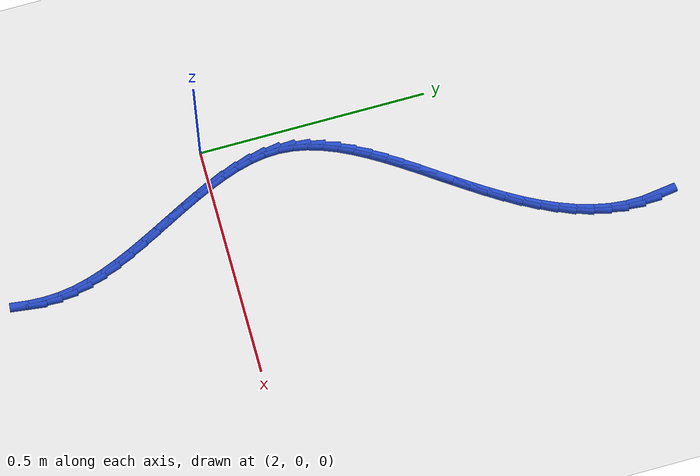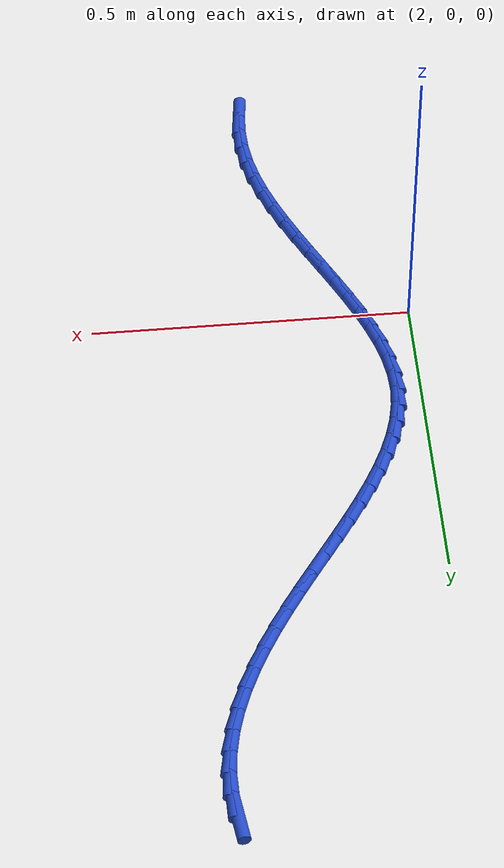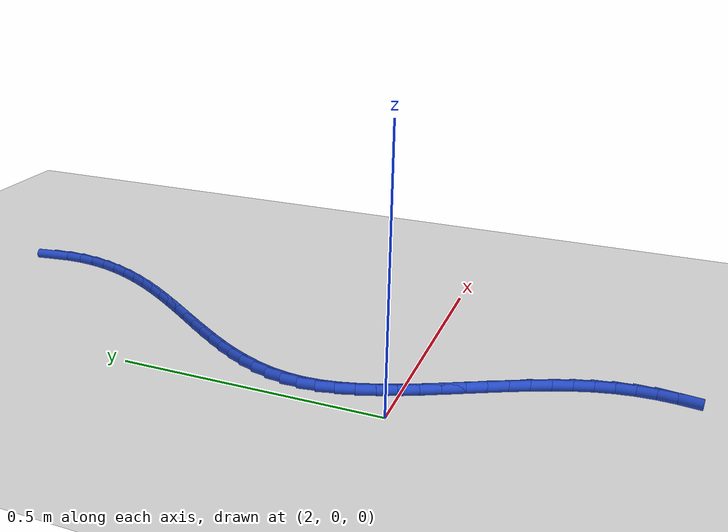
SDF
<sdf version="1.6">
 <world name="default">
  <model name="ground_plane">
   <static>1</static>
   <link name="link">
    <collision name="collision">
     <geometry><plane><normal>0 0 1</normal><size>100 100</size></plane></geometry>
     <surface><friction><ode><mu>100</mu><mu2>50</mu2></ode></friction></surface>
    </collision>
    <visual name="visual">
     <cast_shadows>0</cast_shadows>
     <geometry><plane><normal>0 0 1</normal><size>100 100</size></plane></geometry>
     <material>
      <script><uri>file://media/materials/scripts/gazebo.material</uri><name>Gazebo/WhiteGlow</name></script>
     </material>
    </visual>
   </link>
  </model>
  <model name="line">
   <link name="link_111">
    <pose>2.352010130472843 0.9241629508134968 0.01 0 1.57 -1.4389042242810406</pose>
    <collision name="collision">
     <geometry><cylinder><radius>0.01</radius><length>0.08</length></cylinder></geometry>
    </collision>
    <visual name="visual">
     <material>
      <script><name>Gazebo/Blue</name><uri>file://media/materials/scripts/gazebo.material</uri></script>
     </material>
     <geometry><cylinder><radius>0.01</radius><length>0.08</length></cylinder></geometry>
    </visual>
   </link>
   <link name="link_112">
    <pose>2.3568132731086777 0.8879571498068084 0.01 0 1.57 -1.5601403710904649</pose>
    <collision name="collision">
     <geometry><cylinder><radius>0.01</radius><length>0.08</length></cylinder></geometry>
    </collision>
    <visual name="visual">
     <material>
      <script><name>Gazebo/Blue</name><uri>file://media/materials/scripts/gazebo.material</uri></script>
     </material>
     <geometry><cylinder><radius>0.01</radius><length>0.08</length></cylinder></geometry>
    </visual>
   </link>
   <link name="link_113">
    <pose>2.3571994731211623 0.851715877274012 0.01 0 1.57 1.470739811560466</pose>
    <collision name="collision">
     <geometry><cylinder><radius>0.01</radius><length>0.08</length></cylinder></geometry>
    </collision>
    <visual name="visual">
     <material>
      <script><name>Gazebo/Blue</name><uri>file://media/materials/scripts/gazebo.material</uri></script>
     </material>
     <geometry><cylinder><radius>0.01</radius><length>0.08</length></cylinder></geometry>
    </visual>
   </link>
   <link name="link_114">
    <pose>2.3535669256293317 0.8155321544725239 0.01 0 1.57 1.372161044032186</pose>
    <collision name="collision">
     <geometry><cylinder><radius>0.01</radius><length>0.08</length></cylinder></geometry>
    </collision>
    <visual name="visual">
     <material>
      <script><name>Gazebo/Blue</name><uri>file://media/materials/scripts/gazebo.material</uri></script>
     </material>
     <geometry><cylinder><radius>0.01</radius><length>0.08</length></cylinder></geometry>
    </visual>
   </link>
   <link name="link_115">
    <pose>2.346313825752228 0.7794990026597627 0.01 0 1.57 1.2860539440457877</pose>
    <collision name="collision">
     <geometry><cylinder><radius>0.01</radius><length>0.08</length></cylinder></geometry>
    </collision>
    <visual name="visual">
     <material>
      <script><name>Gazebo/Blue</name><uri>file://media/materials/scripts/gazebo.material</uri></script>
     </material>
     <geometry><cylinder><radius>0.01</radius><length>0.08</length></cylinder></geometry>
    </visual>
   </link>
   <link name="link_116">
    <pose>2.3358383686088895 0.7437094430931458 0.01 0 1.57 1.2119078404725516</pose>
    <collision name="collision">
     <geometry><cylinder><radius>0.01</radius><length>0.08</length></cylinder></geometry>
    </collision>
    <visual name="visual">
     <material>
      <script><name>Gazebo/Blue</name><uri>file://media/materials/scripts/gazebo.material</uri></script>
     </material>
     <geometry><cylinder><radius>0.01</radius><length>0.08</length></cylinder></geometry>
    </visual>
   </link>
   <link name="link_117">
    <pose>2.3225387493183547 0.7082564970300903 0.01 0 1.57 1.148771472020918</pose>
    <collision name="collision">
     <geometry><cylinder><radius>0.01</radius><length>0.08</length></cylinder></geometry>
    </collision>
    <visual name="visual">
     <material>
      <script><name>Gazebo/Blue</name><uri>file://media/materials/scripts/gazebo.material</uri></script>
     </material>
     <geometry><cylinder><radius>0.01</radius><length>0.08</length></cylinder></geometry>
    </visual>
   </link>
   <link name="link_118">
    <pose>2.306813162999663 0.6732331857280144 0.01 0 1.57 1.0955526147759664</pose>
    <collision name="collision">
     <geometry><cylinder><radius>0.01</radius><length>0.08</length></cylinder></geometry>
    </collision>
    <visual name="visual">
     <material>
      <script><name>Gazebo/Blue</name><uri>file://media/materials/scripts/gazebo.material</uri></script>
     </material>
     <geometry><cylinder><radius>0.01</radius><length>0.08</length></cylinder></geometry>
    </visual>
   </link>
   <link name="link_119">
    <pose>2.289059804771854 0.6387325304443353 0.01 0 1.57 1.0512845150465302</pose>
    <collision name="collision">
     <geometry><cylinder><radius>0.01</radius><length>0.08</length></cylinder></geometry>
    </collision>
    <visual name="visual">
     <material>
      <script><name>Gazebo/Blue</name><uri>file://media/materials/scripts/gazebo.material</uri></script>
     </material>
     <geometry><cylinder><radius>0.01</radius><length>0.08</length></cylinder></geometry>
    </visual>
   </link>
   <link name="link_120">
    <pose>2.2696757318100294 0.6048391822168406 0.01 0 1.57 1.0160594451834826</pose>
    <collision name="collision">
     <geometry><cylinder><radius>0.01</radius><length>0.08</length></cylinder></geometry>
    </collision>
    <visual name="visual">
     <material>
      <script><name>Gazebo/Blue</name><uri>file://media/materials/scripts/gazebo.material</uri></script>
     </material>
     <geometry><cylinder><radius>0.01</radius><length>0.08</length></cylinder></geometry>
    </visual>
   </link>
   <link name="link_121">
    <pose>2.2490454193187794 0.5715452445921323 0.01 0 1.57 0.9900147650593917</pose>
    <collision name="collision">
     <geometry><cylinder><radius>0.01</radius><length>0.08</length></cylinder></geometry>
    </collision>
    <visual name="visual">
     <material>
      <script><name>Gazebo/Blue</name><uri>file://media/materials/scripts/gazebo.material</uri></script>
     </material>
     <geometry><cylinder><radius>0.01</radius><length>0.08</length></cylinder></geometry>
    </visual>
   </link>
   <link name="link_122">
    <pose>2.2275455219574845 0.538785296594826 0.01 0 1.57 0.9728954205943204</pose>
    <collision name="collision">
     <geometry><cylinder><radius>0.01</radius><length>0.08</length></cylinder></geometry>
    </collision>
    <visual name="visual">
     <material>
      <script><name>Gazebo/Blue</name><uri>file://media/materials/scripts/gazebo.material</uri></script>
     </material>
     <geometry><cylinder><radius>0.01</radius><length>0.08</length></cylinder></geometry>
    </visual>
   </link>
   <link name="link_123">
    <pose>2.2055525767537634 0.5064930520015833 0.01 0 1.57 0.9645908026445933</pose>
    <collision name="collision">
     <geometry><cylinder><radius>0.01</radius><length>0.08</length></cylinder></geometry>
    </collision>
    <visual name="visual">
     <material>
      <script><name>Gazebo/Blue</name><uri>file://media/materials/scripts/gazebo.material</uri></script>
     </material>
     <geometry><cylinder><radius>0.01</radius><length>0.08</length></cylinder></geometry>
    </visual>
   </link>
   <link name="link_124">
    <pose>2.1834431207352343 0.4746022245890654 0.01 0 1.57 0.9651835770241128</pose>
    <collision name="collision">
     <geometry><cylinder><radius>0.01</radius><length>0.08</length></cylinder></geometry>
    </collision>
    <visual name="visual">
     <material>
      <script><name>Gazebo/Blue</name><uri>file://media/materials/scripts/gazebo.material</uri></script>
     </material>
     <geometry><cylinder><radius>0.01</radius><length>0.08</length></cylinder></geometry>
    </visual>
   </link>
   <link name="link_125">
    <pose>2.1615936909295184 0.4430465281339342 0.01 0 1.57 0.974980211000796</pose>
    <collision name="collision">
     <geometry><cylinder><radius>0.01</radius><length>0.08</length></cylinder></geometry>
    </collision>
    <visual name="visual">
     <material>
      <script><name>Gazebo/Blue</name><uri>file://media/materials/scripts/gazebo.material</uri></script>
     </material>
     <geometry><cylinder><radius>0.01</radius><length>0.08</length></cylinder></geometry>
    </visual>
   </link>
   <link name="link_126">
    <pose>2.1403808243642324 0.41175967641285066 0.01 0 1.57 0.9945347415551987</pose>
    <collision name="collision">
     <geometry><cylinder><radius>0.01</radius><length>0.08</length></cylinder></geometry>
    </collision>
    <visual name="visual">
     <material>
      <script><name>Gazebo/Blue</name><uri>file://media/materials/scripts/gazebo.material</uri></script>
     </material>
     <geometry><cylinder><radius>0.01</radius><length>0.08</length></cylinder></geometry>
    </visual>
   </link>
   <link name="link_127">
    <pose>2.1201810580669984 0.3806753832024764 0.01 0 1.57 1.024663106301082</pose>
    <collision name="collision">
     <geometry><cylinder><radius>0.01</radius><length>0.08</length></cylinder></geometry>
    </collision>
    <visual name="visual">
     <material>
      <script><name>Gazebo/Blue</name><uri>file://media/materials/scripts/gazebo.material</uri></script>
     </material>
     <geometry><cylinder><radius>0.01</radius><length>0.08</length></cylinder></geometry>
    </visual>
   </link>
   <link name="link_128">
    <pose>2.101370929065433 0.34972736227947254 0.01 0 1.57 1.066436790200259</pose>
    <collision name="collision">
     <geometry><cylinder><radius>0.01</radius><length>0.08</length></cylinder></geometry>
    </collision>
    <visual name="visual">
     <material>
      <script><name>Gazebo/Blue</name><uri>file://media/materials/scripts/gazebo.material</uri></script>
     </material>
     <geometry><cylinder><radius>0.01</radius><length>0.08</length></cylinder></geometry>
    </visual>
   </link>
   <link name="link_129">
    <pose>2.0843269743871558 0.31884932742050065 0.01 0 1.57 1.1211314929907723</pose>
    <collision name="collision">
     <geometry><cylinder><radius>0.01</radius><length>0.08</length></cylinder></geometry>
    </collision>
    <visual name="visual">
     <material>
      <script><name>Gazebo/Blue</name><uri>file://media/materials/scripts/gazebo.material</uri></script>
     </material>
     <geometry><cylinder><radius>0.01</radius><length>0.08</length></cylinder></geometry>
    </visual>
   </link>
   <link name="link_130">
    <pose>2.0694257310597868 0.28797499240222235 0.01 0 1.57 1.1900885998670534</pose>
    <collision name="collision">
     <geometry><cylinder><radius>0.01</radius><length>0.08</length></cylinder></geometry>
    </collision>
    <visual name="visual">
     <material>
      <script><name>Gazebo/Blue</name><uri>file://media/materials/scripts/gazebo.material</uri></script>
     </material>
     <geometry><cylinder><radius>0.01</radius><length>0.08</length></cylinder></geometry>
    </visual>
   </link>
   <link name="link_131">
    <pose>2.057043736110945 0.25703807100129866 0.01 0 1.57 1.274430600734181</pose>
    <collision name="collision">
     <geometry><cylinder><radius>0.01</radius><length>0.08</length></cylinder></geometry>
    </collision>
    <visual name="visual">
     <material>
      <script><name>Gazebo/Blue</name><uri>file://media/materials/scripts/gazebo.material</uri></script>
     </material>
     <geometry><cylinder><radius>0.01</radius><length>0.08</length></cylinder></geometry>
    </visual>
   </link>
   <link name="link_132">
    <pose>2.047557526568249 0.2259722769943912 0.01 0 1.57 1.3745791990905163</pose>
    <collision name="collision">
     <geometry><cylinder><radius>0.01</radius><length>0.08</length></cylinder></geometry>
    </collision>
    <visual name="visual">
     <material>
      <script><name>Gazebo/Blue</name><uri>file://media/materials/scripts/gazebo.material</uri></script>
     </material>
     <geometry><cylinder><radius>0.01</radius><length>0.08</length></cylinder></geometry>
    </visual>
   </link>
   <link name="link_133">
    <pose>2.0413436394593183 0.19471132415816128 0.01 0 1.57 1.489603622517904</pose>
    <collision name="collision">
     <geometry><cylinder><radius>0.01</radius><length>0.08</length></cylinder></geometry>
    </collision>
    <visual name="visual">
     <material>
      <script><name>Gazebo/Blue</name><uri>file://media/materials/scripts/gazebo.material</uri></script>
     </material>
     <geometry><cylinder><radius>0.01</radius><length>0.08</length></cylinder></geometry>
    </visual>
   </link>
   <link name="link_134">
    <pose>2.0387786118117717 0.16318892626927034 0.01 0 1.57 -1.527107218656322</pose>
    <collision name="collision">
     <geometry><cylinder><radius>0.01</radius><length>0.08</length></cylinder></geometry>
    </collision>
    <visual name="visual">
     <material>
      <script><name>Gazebo/Blue</name><uri>file://media/materials/scripts/gazebo.material</uri></script>
     </material>
     <geometry><cylinder><radius>0.01</radius><length>0.08</length></cylinder></geometry>
    </visual>
   </link>
   <link name="link_135">
    <pose>2.040170695743506 0.13134579258286863 0.01 0 1.57 -1.413153088254256</pose>
    <collision name="collision">
     <geometry><cylinder><radius>0.01</radius><length>0.08</length></cylinder></geometry>
    </collision>
    <visual name="visual">
     <material>
      <script><name>Gazebo/Blue</name><uri>file://media/materials/scripts/gazebo.material</uri></script>
     </material>
     <geometry><cylinder><radius>0.01</radius><length>0.08</length></cylinder></geometry>
    </visual>
   </link>
   <link name="link_136">
    <pose>2.045284101655322 0.09917836695410041 0.01 0 1.57 -1.3194034757370472</pose>
    <collision name="collision">
     <geometry><cylinder><radius>0.01</radius><length>0.08</length></cylinder></geometry>
    </collision>
    <visual name="visual">
     <material>
      <script><name>Gazebo/Blue</name><uri>file://media/materials/scripts/gazebo.material</uri></script>
     </material>
     <geometry><cylinder><radius>0.01</radius><length>0.08</length></cylinder></geometry>
    </visual>
   </link>
   <link name="link_137">
    <pose>2.053622891866742 0.06670974422606492 0.01 0 1.57 -1.2448988130213807</pose>
    <collision name="collision">
     <geometry><cylinder><radius>0.01</radius><length>0.08</length></cylinder></geometry>
    </collision>
    <visual name="visual">
     <material>
      <script><name>Gazebo/Blue</name><uri>file://media/materials/scripts/gazebo.material</uri></script>
     </material>
     <geometry><cylinder><radius>0.01</radius><length>0.08</length></cylinder></geometry>
    </visual>
   </link>
   <link name="link_138">
    <pose>2.064689508659194 0.03396318520739695 0.01 0 1.57 -1.1877745091916785</pose>
    <collision name="collision">
     <geometry><cylinder><radius>0.01</radius><length>0.08</length></cylinder></geometry>
    </collision>
    <visual name="visual">
     <material>
      <script><name>Gazebo/Blue</name><uri>file://media/materials/scripts/gazebo.material</uri></script>
     </material>
     <geometry><cylinder><radius>0.01</radius><length>0.08</length></cylinder></geometry>
    </visual>
   </link>
   <link name="link_139">
    <pose>2.0779863943141073 0.0009619507067315791 0.01 0 1.57 -1.146069597297994</pose>
    <collision name="collision">
     <geometry><cylinder><radius>0.01</radius><length>0.08</length></cylinder></geometry>
    </collision>
    <visual name="visual">
     <material>
      <script><name>Gazebo/Blue</name><uri>file://media/materials/scripts/gazebo.material</uri></script>
     </material>
     <geometry><cylinder><radius>0.01</radius><length>0.08</length></cylinder></geometry>
    </visual>
   </link>
   <link name="link_140">
    <pose>2.0930159911129094 -0.032270698467296285 0.01 0 1.57 -1.1181085017599917</pose>
    <collision name="collision">
     <geometry><cylinder><radius>0.01</radius><length>0.08</length></cylinder></geometry>
    </collision>
    <visual name="visual">
     <material>
      <script><name>Gazebo/Blue</name><uri>file://media/materials/scripts/gazebo.material</uri></script>
     </material>
     <geometry><cylinder><radius>0.01</radius><length>0.08</length></cylinder></geometry>
    </visual>
   </link>
   <link name="link_141">
    <pose>2.1092807413370305 -0.0657115015060517 0.01 0 1.57 -1.1026504816431177</pose>
    <collision name="collision">
     <geometry><cylinder><radius>0.01</radius><length>0.08</length></cylinder></geometry>
    </collision>
    <visual name="visual">
     <material>
      <script><name>Gazebo/Blue</name><uri>file://media/materials/scripts/gazebo.material</uri></script>
     </material>
     <geometry><cylinder><radius>0.01</radius><length>0.08</length></cylinder></geometry>
    </visual>
   </link>
   <link name="link_142">
    <pose>2.1262830872678986 -0.09933719760089967 0.01 0 1.57 -1.0989260331519901</pose>
    <collision name="collision">
     <geometry><cylinder><radius>0.01</radius><length>0.08</length></cylinder></geometry>
    </collision>
    <visual name="visual">
     <material>
      <script><name>Gazebo/Blue</name><uri>file://media/materials/scripts/gazebo.material</uri></script>
     </material>
     <geometry><cylinder><radius>0.01</radius><length>0.08</length></cylinder></geometry>
    </visual>
   </link>
   <link name="link_143">
    <pose>2.143525471186943 -0.13312452594320523 0.01 0 1.57 -1.1066297346344127</pose>
    <collision name="collision">
     <geometry><cylinder><radius>0.01</radius><length>0.08</length></cylinder></geometry>
    </collision>
    <visual name="visual">
     <material>
      <script><name>Gazebo/Blue</name><uri>file://media/materials/scripts/gazebo.material</uri></script>
     </material>
     <geometry><cylinder><radius>0.01</radius><length>0.08</length></cylinder></geometry>
    </visual>
   </link>
   <link name="link_144">
    <pose>2.160510335375592 -0.16705022572433353 0.01 0 1.57 -1.1259012404034352</pose>
    <collision name="collision">
     <geometry><cylinder><radius>0.01</radius><length>0.08</length></cylinder></geometry>
    </collision>
    <visual name="visual">
     <material>
      <script><name>Gazebo/Blue</name><uri>file://media/materials/scripts/gazebo.material</uri></script>
     </material>
     <geometry><cylinder><radius>0.01</radius><length>0.08</length></cylinder></geometry>
    </visual>
   </link>
   <link name="link_145">
    <pose>2.1767401221152745 -0.2010910361356485 0.01 0 1.57 -1.1573016397725842</pose>
    <collision name="collision">
     <geometry><cylinder><radius>0.01</radius><length>0.08</length></cylinder></geometry>
    </collision>
    <visual name="visual">
     <material>
      <script><name>Gazebo/Blue</name><uri>file://media/materials/scripts/gazebo.material</uri></script>
     </material>
     <geometry><cylinder><radius>0.01</radius><length>0.08</length></cylinder></geometry>
    </visual>
   </link>
   <link name="link_146">
    <pose>2.1917172736874195 -0.23522369636851725 0.01 0 1.57 -1.201773812207147</pose>
    <collision name="collision">
     <geometry><cylinder><radius>0.01</radius><length>0.08</length></cylinder></geometry>
    </collision>
    <visual name="visual">
     <material>
      <script><name>Gazebo/Blue</name><uri>file://media/materials/scripts/gazebo.material</uri></script>
     </material>
     <geometry><cylinder><radius>0.01</radius><length>0.08</length></cylinder></geometry>
    </visual>
   </link>
   <link name="link_147">
    <pose>2.204944232373456 -0.26942494561430375 0.01 0 1.57 -1.2605556879668982</pose>
    <collision name="collision">
     <geometry><cylinder><radius>0.01</radius><length>0.08</length></cylinder></geometry>
    </collision>
    <visual name="visual">
     <material>
      <script><name>Gazebo/Blue</name><uri>file://media/materials/scripts/gazebo.material</uri></script>
     </material>
     <geometry><cylinder><radius>0.01</radius><length>0.08</length></cylinder></geometry>
    </visual>
   </link>
   <link name="link_148">
    <pose>2.2159234404548114 -0.303671523064373 0.01 0 1.57 -1.3349913087744372</pose>
    <collision name="collision">
     <geometry><cylinder><radius>0.01</radius><length>0.08</length></cylinder></geometry>
    </collision>
    <visual name="visual">
     <material>
      <script><name>Gazebo/Blue</name><uri>file://media/materials/scripts/gazebo.material</uri></script>
     </material>
     <geometry><cylinder><radius>0.01</radius><length>0.08</length></cylinder></geometry>
    </visual>
   </link>
   <link name="link_149">
    <pose>2.2241573402129164 -0.3379401679100903 0.01 0 1.57 -1.4259823947285393</pose>
    <collision name="collision">
     <geometry><cylinder><radius>0.01</radius><length>0.08</length></cylinder></geometry>
    </collision>
    <visual name="visual">
     <material>
      <script><name>Gazebo/Blue</name><uri>file://media/materials/scripts/gazebo.material</uri></script>
     </material>
     <geometry><cylinder><radius>0.01</radius><length>0.08</length></cylinder></geometry>
    </visual>
   </link>
   <link name="link_150">
    <pose>2.2291548104129815 -0.3722081909089285 0.01 0 1.57 -1.5243381262807467</pose>
    <collision name="collision">
     <geometry><cylinder><radius>0.01</radius><length>0.08</length></cylinder></geometry>
    </collision>
    <visual name="visual">
     <material>
      <script><name>Gazebo/Blue</name><uri>file://media/materials/scripts/gazebo.material</uri></script>
     </material>
     <geometry><cylinder><radius>0.01</radius><length>0.08</length></cylinder></geometry>
    </visual>
   </link>
   <link name="link_151">
    <pose>2.2307482393199316 -0.4064816307810073 0.01 0 1.57 1.5268398329259874</pose>
    <collision name="collision">
     <geometry><cylinder><radius>0.01</radius><length>0.08</length></cylinder></geometry>
    </collision>
    <visual name="visual">
     <material>
      <script><name>Gazebo/Blue</name><uri>file://media/materials/scripts/gazebo.material</uri></script>
     </material>
     <geometry><cylinder><radius>0.01</radius><length>0.08</length></cylinder></geometry>
    </visual>
   </link>
   <link name="link_152">
    <pose>2.2292383947069405 -0.44080811880873305 0.01 0 1.57 1.4472453537367476</pose>
    <collision name="collision">
     <geometry><cylinder><radius>0.01</radius><length>0.08</length></cylinder></geometry>
    </collision>
    <visual name="visual">
     <material>
      <script><name>Gazebo/Blue</name><uri>file://media/materials/scripts/gazebo.material</uri></script>
     </material>
     <geometry><cylinder><radius>0.01</radius><length>0.08</length></cylinder></geometry>
    </visual>
   </link>
  </model>
 </world>
</sdf>
